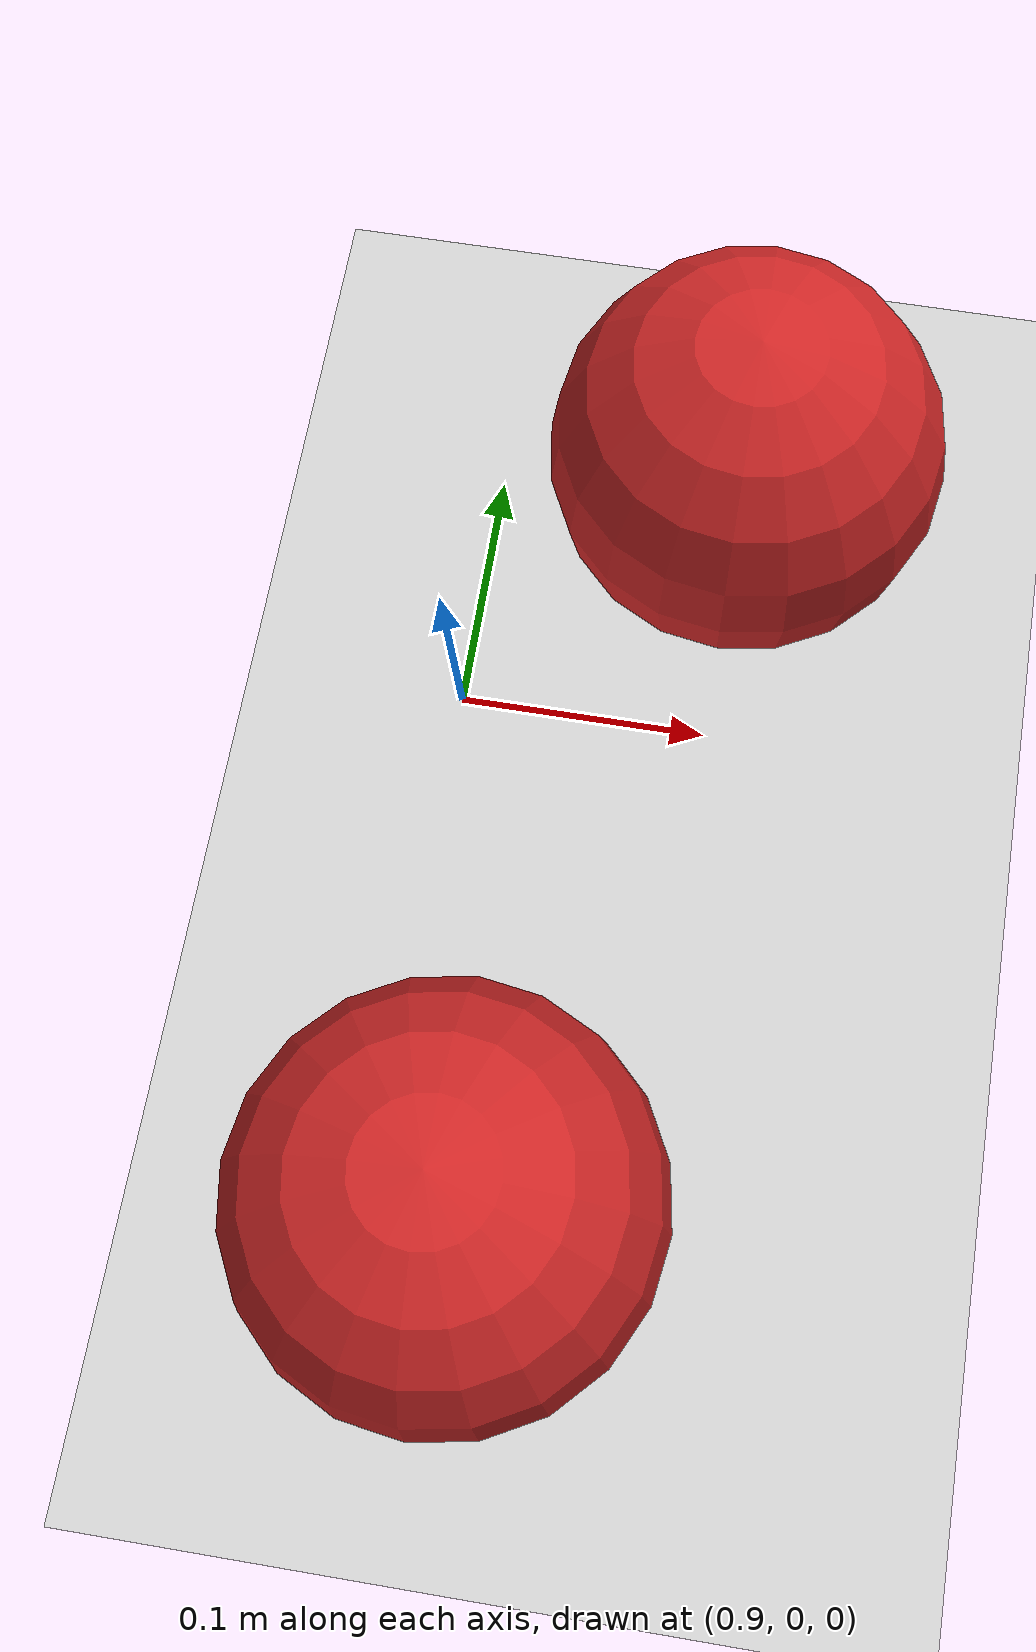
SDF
<sdf version="1.6">
 <world name="default">
  <light name="sun" type="directional">
   <pose>0 0 10 0 -0 0</pose>
   <diffuse>0.8 0.8 0.8 1</diffuse>
   <specular>0.2 0.2 0.2 1</specular>
   <attenuation>
    <range>1000</range>
    <constant>0.9</constant>
    <linear>0.01</linear>
    <quadratic>0.001</quadratic>
   </attenuation>
   <direction>-0.5 0.1 -0.9</direction>
  </light>
  <model name="ground_plane">
   <static>1</static>
   <link name="link">
    <collision name="collision">
     <geometry><plane><normal>0 0 1</normal><size>100 100</size></plane></geometry>
     <surface>
      <contact><collide_bitmask>65535</collide_bitmask></contact>
      <friction><ode><mu>100</mu><mu2>50</mu2><kp>1e15</kp><kd>1e13</kd></ode></friction>
     </surface>
    </collision>
    <visual name="visual">
     <cast_shadows>0</cast_shadows>
     <geometry><plane><normal>0 0 1</normal><size>100 100</size></plane></geometry>
     <material>
      <script><uri>file://media/materials/scripts/gazebo.material</uri><name>Gazebo/Grey</name></script>
     </material>
    </visual>
   </link>
  </model>
  <gravity>0 0 -9.8</gravity>
  <magnetic_field>6e-06 2.3e-05 -4.2e-05</magnetic_field>
  <atmosphere type="adiabatic"/>
  <physics name="default_physics" default="0" type="ode">
   <max_step_size>0.001</max_step_size>
   <real_time_factor>1</real_time_factor>
   <real_time_update_rate>1000</real_time_update_rate>
  </physics>
  <scene><ambient>0.4 0.4 0.4 1</ambient><background>0.7 0.7 0.7 1</background><shadows>1</shadows></scene>
  <audio><device>default</device></audio>
  <spherical_coordinates>
   <surface_model>EARTH_WGS84</surface_model>
   <latitude_deg>0</latitude_deg>
   <longitude_deg>0</longitude_deg>
   <elevation>0</elevation>
   <heading_deg>0</heading_deg>
  </spherical_coordinates>
  <model name="sphere">
   <link name="link">
    <inertial>
     <mass>1</mass>
     <inertia><ixx>0.1</ixx><ixy>0</ixy><ixz>0</ixz><iyy>0.1</iyy><iyz>0</iyz><izz>0.1</izz></inertia>
    </inertial>
    <visual name="visual">
     <geometry><sphere><radius>0.0757464</radius></sphere></geometry>
     <material>
      <script><name>Gazebo/Red</name><uri>file://media/materials/scripts/gazebo.material</uri></script>
      <shader type="vertex"><normal_map>__default__</normal_map></shader>
      <ambient>0.3 0.3 0.3 1</ambient>
      <diffuse>0.7 0.7 0.7 1</diffuse>
      <specular>0.01 0.01 0.01 1</specular>
      <emissive>0 0 0 1</emissive>
     </material>
    </visual>
    <collision name="collision">
     <geometry><sphere><radius>0.075746</radius></sphere></geometry>
     <surface>
      <friction>
       <ode><mu>1</mu><mu2>1</mu2><fdir1>0 0 0</fdir1><slip1>0</slip1><slip2>0</slip2></ode>
       <torsional>
        <coefficient>1</coefficient>
        <patch_radius>0</patch_radius>
        <surface_radius>0</surface_radius>
        <use_patch_radius>1</use_patch_radius>
        <ode><slip>0</slip></ode>
       </torsional>
      </friction>
      <bounce><restitution_coefficient>0</restitution_coefficient><threshold>1e+06</threshold></bounce>
      <contact>
       <collide_without_contact>0</collide_without_contact>
       <collide_without_contact_bitmask>1</collide_without_contact_bitmask>
       <collide_bitmask>1</collide_bitmask>
       <ode>
        <soft_cfm>0</soft_cfm>
        <soft_erp>0.2</soft_erp>
        <kp>1e+13</kp>
        <kd>1</kd>
        <max_vel>0.01</max_vel>
        <min_depth>0</min_depth>
       </ode>
       <bullet>
        <split_impulse>1</split_impulse>
        <split_impulse_penetration_threshold>-0.01</split_impulse_penetration_threshold>
        <soft_cfm>0</soft_cfm>
        <soft_erp>0.2</soft_erp>
        <kp>1e+13</kp>
        <kd>1</kd>
       </bullet>
      </contact>
     </surface>
    </collision>
   </link>
   <static>1</static>
   <pose>1.00043 0.089223 0.075746 0 -0 0</pose>
  </model>
  <model name="sphere_0">
   <link name="link">
    <inertial>
     <mass>1</mass>
     <inertia><ixx>0.1</ixx><ixy>0</ixy><ixz>0</ixz><iyy>0.1</iyy><iyz>0</iyz><izz>0.1</izz></inertia>
    </inertial>
    <visual name="visual">
     <geometry><sphere><radius>0.0757464</radius></sphere></geometry>
     <material>
      <script><name>Gazebo/Red</name><uri>file://media/materials/scripts/gazebo.material</uri></script>
      <shader type="vertex"><normal_map>__default__</normal_map></shader>
      <ambient>0 1 0 1</ambient>
      <diffuse>0.7 0.7 0.7 1</diffuse>
      <specular>0.01 0.01 0.01 1</specular>
      <emissive>0 0 0 1</emissive>
     </material>
    </visual>
    <collision name="collision">
     <geometry><sphere><radius>0.075746</radius></sphere></geometry>
     <surface>
      <friction>
       <ode><mu>1</mu><mu2>1</mu2><fdir1>0 0 0</fdir1><slip1>0</slip1><slip2>0</slip2></ode>
       <torsional>
        <coefficient>1</coefficient>
        <patch_radius>0</patch_radius>
        <surface_radius>0</surface_radius>
        <use_patch_radius>1</use_patch_radius>
        <ode><slip>0</slip></ode>
       </torsional>
      </friction>
      <bounce><restitution_coefficient>0</restitution_coefficient><threshold>1e+06</threshold></bounce>
      <contact>
       <collide_without_contact>0</collide_without_contact>
       <collide_without_contact_bitmask>1</collide_without_contact_bitmask>
       <collide_bitmask>1</collide_bitmask>
       <ode>
        <soft_cfm>0</soft_cfm>
        <soft_erp>0.2</soft_erp>
        <kp>1e+13</kp>
        <kd>1</kd>
        <max_vel>0.01</max_vel>
        <min_depth>0</min_depth>
       </ode>
       <bullet>
        <split_impulse>1</split_impulse>
        <split_impulse_penetration_threshold>-0.01</split_impulse_penetration_threshold>
        <soft_cfm>0</soft_cfm>
        <soft_erp>0.2</soft_erp>
        <kp>1e+13</kp>
        <kd>1</kd>
       </bullet>
      </contact>
     </surface>
    </collision>
   </link>
   <static>0</static>
   <pose>0.938918 -0.204979 0.075746 -0.041217 -0.008023 0.011281</pose>
  </model>
  <light name="user_spot_light_0" type="spot">
   <pose>0.893644 -0.038194 1 0 -0 0</pose>
   <diffuse>0.5 0.5 0.5 1</diffuse>
   <specular>0.1 0.1 0.1 1</specular>
   <direction>0 0 -1</direction>
   <attenuation>
    <range>20</range>
    <constant>0.5</constant>
    <linear>0.01</linear>
    <quadratic>0.001</quadratic>
   </attenuation>
   <cast_shadows>0</cast_shadows>
   <spot><inner_angle>0.6</inner_angle><outer_angle>1</outer_angle><falloff>1</falloff></spot>
  </light>
 </world>
</sdf>
